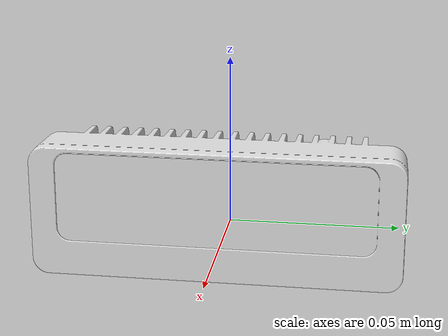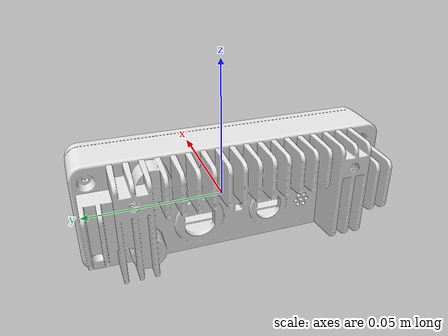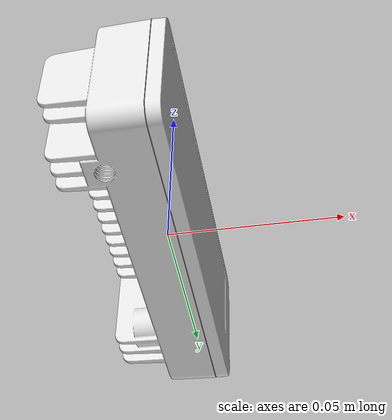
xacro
<?xml version="1.0"?>
<robot name="depthai_camera" xmlns:xacro="http://ros.org/wiki/xacro">

    <xacro:macro name="depthai_camera" params="camera_name parent_frame
                                               cam_pos_x:=0.0 cam_pos_y:=0.0 cam_pos_z:=0.0
                                               cam_roll:=0.0  cam_pitch:=0.0 cam_yaw:=0.0
                                               baseline:=0.075">

        <xacro:property name="M_PI" value="3.1415926535897931" />

        <joint name="${camera_name}_base_joint" type="fixed">
            <parent link="${parent_frame}" />
            <child link="${camera_name}_link" />
            <origin xyz="${cam_pos_x} ${cam_pos_y} ${cam_pos_z}" rpy="${cam_roll} ${cam_pitch} ${cam_yaw}" />
        </joint>

        <link name="${camera_name}_link">
            <visual>
                <origin xyz="0.00 -0.048 0.02" rpy="1.5708 0 1.5708"/>
                <geometry>
                    <mesh filename="package://rover_autonomy/mesh/oak_d_pro_w_poe.stl" scale="0.001 0.001 0.001"/>
                </geometry>
            </visual>
            <collision>
                <origin xyz="0 0 0" rpy="0 0 0" />
                <geometry>
                    <box size="0.03 0.10 0.03"/>
                </geometry>
            </collision>
        </link>

        <link name="${camera_name}_model_origin" />
        <joint name="${camera_name}_model_origin_joint" type="fixed">
            <parent link="${camera_name}_link" />
            <child link="${camera_name}_model_origin" />
            <origin xyz="0 0 0" rpy="0 0 0" />
        </joint>

        <link name="${camera_name}_imu_frame" />
        <joint name="${camera_name}_imu_joint" type="fixed">
            <parent link="${camera_name}_link" />
            <child link="${camera_name}_imu_frame" />
            <origin xyz="0 0 0" rpy="0 0 0" />
        </joint>

        <link name="${camera_name}_rgb_camera_frame" />
        <joint name="${camera_name}_rgb_camera_joint" type="fixed">
            <parent link="${camera_name}_link" />
            <child link="${camera_name}_rgb_camera_frame" />
            <origin xyz="0 0 0" rpy="0 0 0" />
        </joint>

        <link name="${camera_name}_rgb_camera_optical_frame" />
        <joint name="${camera_name}_rgb_camera_optical_joint" type="fixed">
            <origin xyz="0 0 0" rpy="-${M_PI/2} 0.0 -${M_PI/2}" />
            <parent link="${camera_name}_rgb_camera_frame" />
            <child link="${camera_name}_rgb_camera_optical_frame" />
        </joint>

        <link name="${camera_name}_left_camera_frame" />
        <joint name="${camera_name}_left_camera_joint" type="fixed">
            <parent link="${camera_name}_link" />
            <child link="${camera_name}_left_camera_frame" />
            <origin xyz="0 ${baseline/2} 0" rpy="0 0 0" />
        </joint>

        <link name="${camera_name}_left_camera_optical_frame" />
        <joint name="${camera_name}_left_camera_optical_joint" type="fixed">
            <origin xyz="0 0 0" rpy="-${M_PI/2} 0.0 -${M_PI/2}" />
            <parent link="${camera_name}_left_camera_frame" />
            <child link="${camera_name}_left_camera_optical_frame" />
        </joint>

        <link name="${camera_name}_right_camera_frame" />
        <joint name="${camera_name}_right_camera_joint" type="fixed">
            <parent link="${camera_name}_link" />
            <child link="${camera_name}_right_camera_frame" />
            <origin xyz="0 -${baseline/2} 0" rpy="0 0 0" />
        </joint>

        <link name="${camera_name}_right_camera_optical_frame" />
        <joint name="${camera_name}_right_camera_optical_joint" type="fixed">
            <origin xyz="0 0 0" rpy="-${M_PI/2} 0.0 -${M_PI/2}" />
            <parent link="${camera_name}_right_camera_frame" />
            <child link="${camera_name}_right_camera_optical_frame" />
        </joint>

    </xacro:macro>

    <xacro:arg name="camera_name" default="camera_00"/>
    <xacro:arg name="parent_frame" default="base_link"/>

    <link name="$(arg parent_frame)"/>
    <xacro:depthai_camera camera_name="$(arg camera_name)" parent_frame="$(arg parent_frame)" />
</robot>
